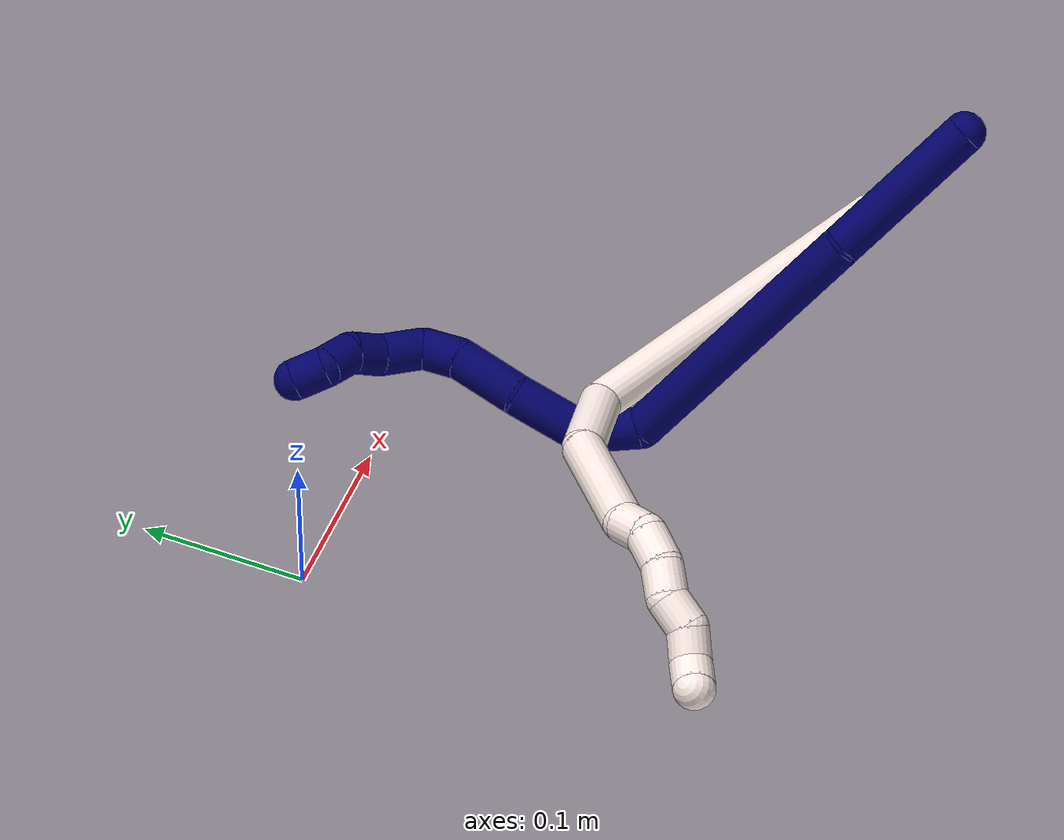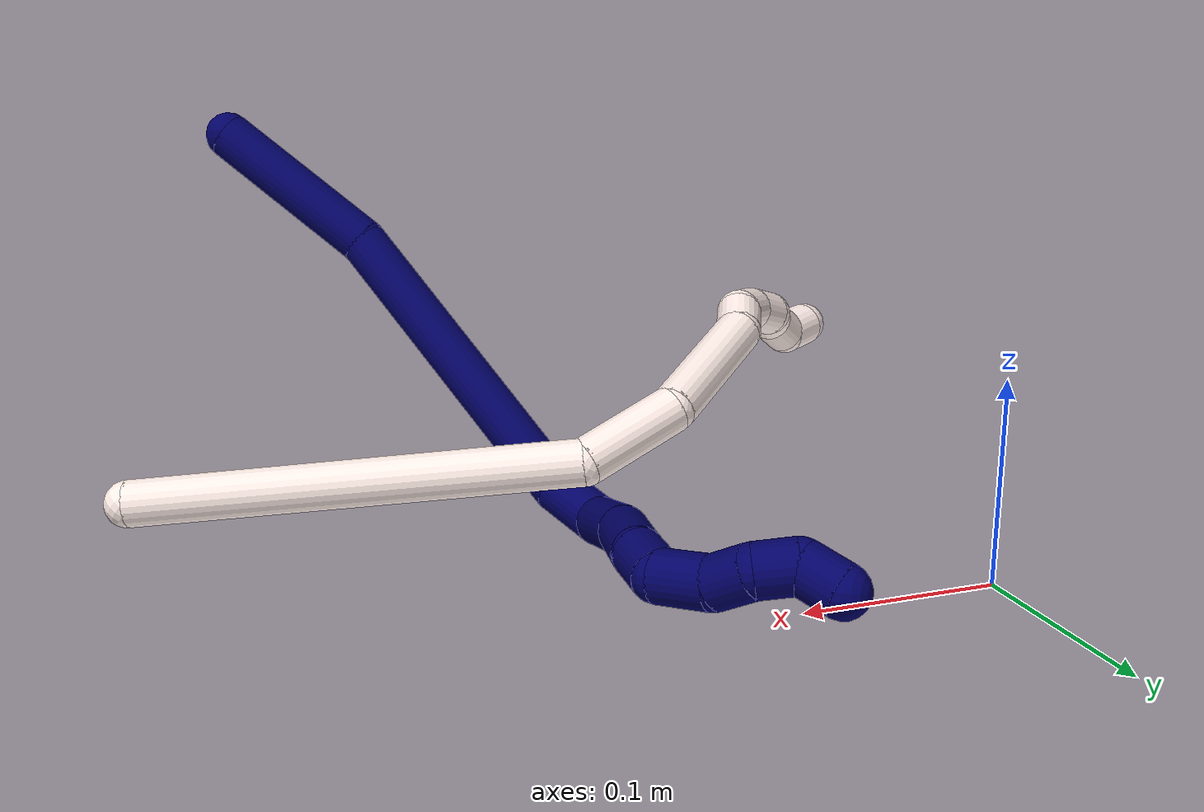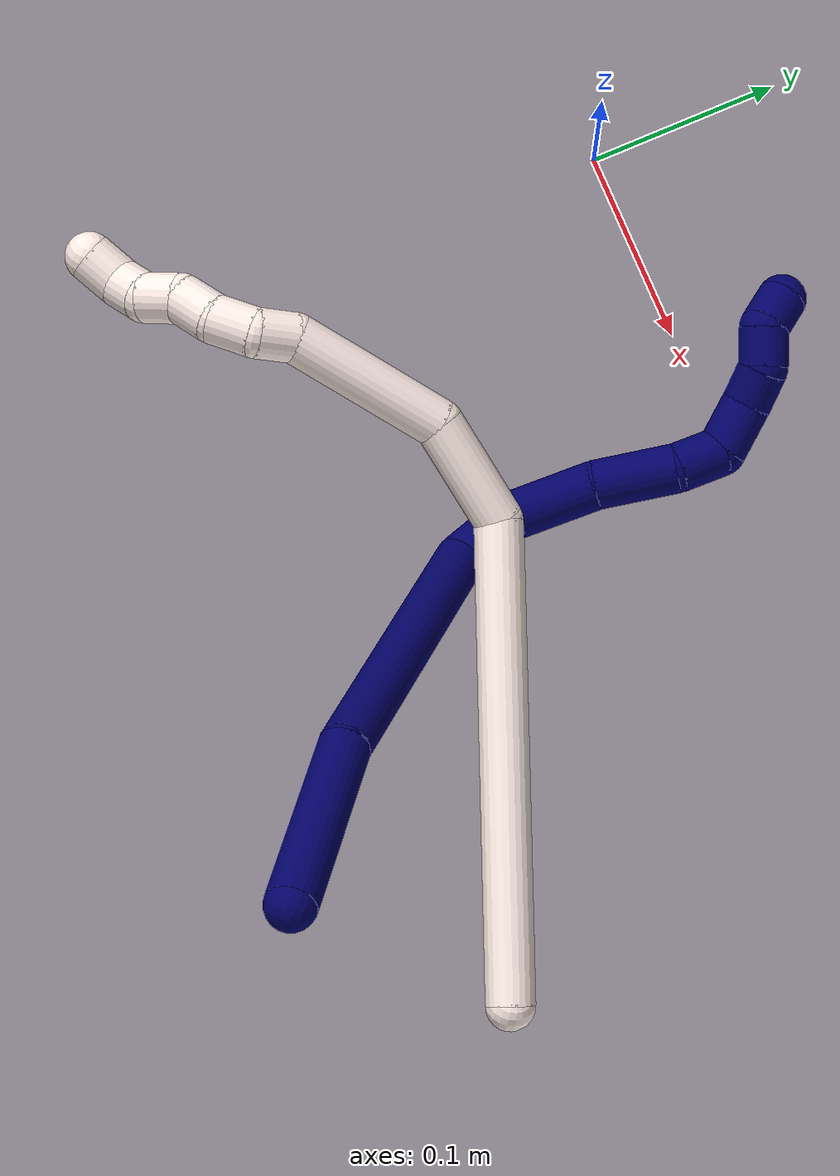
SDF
<sdf version="1.7">
 <world name="default">
  <model name="7">
   <static>0</static>
   <link name="7">
    <collision name="collision-cylinder-e_1_1_4">
     <pose>0.015971 0.026418 -0.037266 -2.52491 0.336335 -0.979444</pose>
     <geometry><cylinder><radius>0.0125</radius><length>0.096783</length></cylinder></geometry>
     <surface>
      <friction><ode><mu>1.16</mu><mu2>1.16</mu2><slip1>0</slip1><slip2>0</slip2></ode></friction>
      <contact><ode><kp>1e+06</kp><kd>1</kd><max_vel>0</max_vel><min_depth>0.001</min_depth></ode></contact>
     </surface>
    </collision>
    <visual name="visual-cylinder-e_1_1_4">
     <pose>0.015971 0.026418 -0.037266 -2.52491 0.336335 -0.979444</pose>
     <geometry><cylinder><radius>0.0125</radius><length>0.096783</length></cylinder></geometry>
     <material><ambient>0.003922 0 0.403922 1</ambient></material>
    </visual>
    <collision name="collision-cylinder-e_2_4_5">
     <pose>0.051235 0.113967 -0.130602 -2.31304 0.228528 -0.510594</pose>
     <geometry><cylinder><radius>0.0125</radius><length>0.170328</length></cylinder></geometry>
     <surface>
      <friction><ode><mu>1.16</mu><mu2>1.16</mu2><slip1>0</slip1><slip2>0</slip2></ode></friction>
      <contact><ode><kp>1e+06</kp><kd>1</kd><max_vel>0</max_vel><min_depth>0.001</min_depth></ode></contact>
     </surface>
    </collision>
    <visual name="visual-cylinder-e_2_4_5">
     <pose>0.051235 0.113967 -0.130602 -2.31304 0.228528 -0.510594</pose>
     <geometry><cylinder><radius>0.0125</radius><length>0.170328</length></cylinder></geometry>
     <material><ambient>0.003922 0 0.403922 1</ambient></material>
    </visual>
    <collision name="collision-cylinder-e_3_5_6">
     <pose>0.065532 0.181701 -0.202682 -2.75036 -0.280842 1.23925</pose>
     <geometry><cylinder><radius>0.0125</radius><length>0.03605</length></cylinder></geometry>
     <surface>
      <friction><ode><mu>1.16</mu><mu2>1.16</mu2><slip1>0</slip1><slip2>0</slip2></ode></friction>
      <contact><ode><kp>1e+06</kp><kd>1</kd><max_vel>0</max_vel><min_depth>0.001</min_depth></ode></contact>
     </surface>
    </collision>
    <visual name="visual-cylinder-e_3_5_6">
     <pose>0.065532 0.181701 -0.202682 -2.75036 -0.280842 1.23925</pose>
     <geometry><cylinder><radius>0.0125</radius><length>0.03605</length></cylinder></geometry>
     <material><ambient>0.003922 0 0.403922 1</ambient></material>
    </visual>
    <collision name="collision-cylinder-e_4_6_7">
     <pose>0.044611 0.188827 -0.234087 -3.10776 -0.802016 3.06184</pose>
     <geometry><cylinder><radius>0.0125</radius><length>0.044313</length></cylinder></geometry>
     <surface>
      <friction><ode><mu>1.16</mu><mu2>1.16</mu2><slip1>0</slip1><slip2>0</slip2></ode></friction>
      <contact><ode><kp>1e+06</kp><kd>1</kd><max_vel>0</max_vel><min_depth>0.001</min_depth></ode></contact>
     </surface>
    </collision>
    <visual name="visual-cylinder-e_4_6_7">
     <pose>0.044611 0.188827 -0.234087 -3.10776 -0.802016 3.06184</pose>
     <geometry><cylinder><radius>0.0125</radius><length>0.044313</length></cylinder></geometry>
     <material><ambient>0.003922 0 0.403922 1</ambient></material>
    </visual>
    <collision name="collision-cylinder-e_5_7_8">
     <pose>0.012492 0.192588 -0.261923 -2.8868 -0.899864 2.62309</pose>
     <geometry><cylinder><radius>0.0125</radius><length>0.041353</length></cylinder></geometry>
     <surface>
      <friction><ode><mu>1.16</mu><mu2>1.16</mu2><slip1>0</slip1><slip2>0</slip2></ode></friction>
      <contact><ode><kp>1e+06</kp><kd>1</kd><max_vel>0</max_vel><min_depth>0.001</min_depth></ode></contact>
     </surface>
    </collision>
    <visual name="visual-cylinder-e_5_7_8">
     <pose>0.012492 0.192588 -0.261923 -2.8868 -0.899864 2.62309</pose>
     <geometry><cylinder><radius>0.0125</radius><length>0.041353</length></cylinder></geometry>
     <material><ambient>0.003922 0 0.403922 1</ambient></material>
    </visual>
    <collision name="collision-cylinder-e_6_8_9">
     <pose>-0.010847 0.199601 -0.283165 -2.73668 -0.640898 2.03378</pose>
     <geometry><cylinder><radius>0.0125</radius><length>0.023896</length></cylinder></geometry>
     <surface>
      <friction><ode><mu>1.16</mu><mu2>1.16</mu2><slip1>0</slip1><slip2>0</slip2></ode></friction>
      <contact><ode><kp>1e+06</kp><kd>1</kd><max_vel>0</max_vel><min_depth>0.001</min_depth></ode></contact>
     </surface>
    </collision>
    <visual name="visual-cylinder-e_6_8_9">
     <pose>-0.010847 0.199601 -0.283165 -2.73668 -0.640898 2.03378</pose>
     <geometry><cylinder><radius>0.0125</radius><length>0.023896</length></cylinder></geometry>
     <material><ambient>0.003922 0 0.403922 1</ambient></material>
    </visual>
    <collision name="collision-cylinder-e_7_9_10">
     <pose>-0.018567 0.203198 -0.305362 3.12852 -0.043028 -2.55177</pose>
     <geometry><cylinder><radius>0.0125</radius><length>0.026815</length></cylinder></geometry>
     <surface>
      <friction><ode><mu>1.16</mu><mu2>1.16</mu2><slip1>0</slip1><slip2>0</slip2></ode></friction>
      <contact><ode><kp>1e+06</kp><kd>1</kd><max_vel>0</max_vel><min_depth>0.001</min_depth></ode></contact>
     </surface>
    </collision>
    <visual name="visual-cylinder-e_7_9_10">
     <pose>-0.018567 0.203198 -0.305362 3.12852 -0.043028 -2.55177</pose>
     <geometry><cylinder><radius>0.0125</radius><length>0.026815</length></cylinder></geometry>
     <material><ambient>0.003922 0 0.403922 1</ambient></material>
    </visual>
    <collision name="collision-cylinder-e_8_10_11">
     <pose>-0.020288 0.199215 -0.328124 2.75551 -0.112684 -0.561816</pose>
     <geometry><cylinder><radius>0.0125</radius><length>0.020354</length></cylinder></geometry>
     <surface>
      <friction><ode><mu>1.16</mu><mu2>1.16</mu2><slip1>0</slip1><slip2>0</slip2></ode></friction>
      <contact><ode><kp>1e+06</kp><kd>1</kd><max_vel>0</max_vel><min_depth>0.001</min_depth></ode></contact>
     </surface>
    </collision>
    <visual name="visual-cylinder-e_8_10_11">
     <pose>-0.020288 0.199215 -0.328124 2.75551 -0.112684 -0.561816</pose>
     <geometry><cylinder><radius>0.0125</radius><length>0.020354</length></cylinder></geometry>
     <material><ambient>0.003922 0 0.403922 1</ambient></material>
    </visual>
    <collision name="collision-cylinder-e_9_11_12">
     <pose>-0.017716 0.19329 -0.346551 2.91205 0.380068 2.0618</pose>
     <geometry><cylinder><radius>0.0125</radius><length>0.020037</length></cylinder></geometry>
     <surface>
      <friction><ode><mu>1.16</mu><mu2>1.16</mu2><slip1>0</slip1><slip2>0</slip2></ode></friction>
      <contact><ode><kp>1e+06</kp><kd>1</kd><max_vel>0</max_vel><min_depth>0.001</min_depth></ode></contact>
     </surface>
    </collision>
    <visual name="visual-cylinder-e_9_11_12">
     <pose>-0.017716 0.19329 -0.346551 2.91205 0.380068 2.0618</pose>
     <geometry><cylinder><radius>0.0125</radius><length>0.020037</length></cylinder></geometry>
     <material><ambient>0.003922 0 0.403922 1</ambient></material>
    </visual>
    <collision name="collision-cylinder-e_10_12_2">
     <pose>-0.013522 0.195173 -0.364802 -2.73118 0.047547 -0.227504</pose>
     <geometry><cylinder><radius>0.0125</radius><length>0.020071</length></cylinder></geometry>
     <surface>
      <friction><ode><mu>1.16</mu><mu2>1.16</mu2><slip1>0</slip1><slip2>0</slip2></ode></friction>
      <contact><ode><kp>1e+06</kp><kd>1</kd><max_vel>0</max_vel><min_depth>0.001</min_depth></ode></contact>
     </surface>
    </collision>
    <visual name="visual-cylinder-e_10_12_2">
     <pose>-0.013522 0.195173 -0.364802 -2.73118 0.047547 -0.227504</pose>
     <geometry><cylinder><radius>0.0125</radius><length>0.020071</length></cylinder></geometry>
     <material><ambient>0.003922 0 0.403922 1</ambient></material>
    </visual>
    <collision name="collision-sphere-2">
     <pose>-0.013046 0.199173 -0.373994 0 -0 0</pose>
     <geometry><sphere><radius>0.0125</radius></sphere></geometry>
     <surface>
      <friction><ode><mu>1.16</mu><mu2>1.16</mu2><slip1>0</slip1><slip2>0</slip2></ode></friction>
      <contact><ode><kp>1e+06</kp><kd>1</kd><max_vel>0</max_vel><min_depth>0.001</min_depth></ode></contact>
     </surface>
    </collision>
    <visual name="visual-sphere-2">
     <pose>-0.013046 0.199173 -0.373994 0 -0 0</pose>
     <geometry><sphere><radius>0.0125</radius></sphere></geometry>
     <material><ambient>0.003922 0 0.403922 1</ambient></material>
    </visual>
    <collision name="collision-sphere-12">
     <pose>-0.013999 0.191174 -0.355611 0 -0 0</pose>
     <geometry><sphere><radius>0.0125</radius></sphere></geometry>
     <surface>
      <friction><ode><mu>1.16</mu><mu2>1.16</mu2><slip1>0</slip1><slip2>0</slip2></ode></friction>
      <contact><ode><kp>1e+06</kp><kd>1</kd><max_vel>0</max_vel><min_depth>0.001</min_depth></ode></contact>
     </surface>
    </collision>
    <visual name="visual-sphere-12">
     <pose>-0.013999 0.191174 -0.355611 0 -0 0</pose>
     <geometry><sphere><radius>0.0125</radius></sphere></geometry>
     <material><ambient>0.003922 0 0.403922 1</ambient></material>
    </visual>
    <collision name="collision-sphere-11">
     <pose>-0.021433 0.195407 -0.337492 0 -0 0</pose>
     <geometry><sphere><radius>0.0125</radius></sphere></geometry>
     <surface>
      <friction><ode><mu>1.16</mu><mu2>1.16</mu2><slip1>0</slip1><slip2>0</slip2></ode></friction>
      <contact><ode><kp>1e+06</kp><kd>1</kd><max_vel>0</max_vel><min_depth>0.001</min_depth></ode></contact>
     </surface>
    </collision>
    <visual name="visual-sphere-11">
     <pose>-0.021433 0.195407 -0.337492 0 -0 0</pose>
     <geometry><sphere><radius>0.0125</radius></sphere></geometry>
     <material><ambient>0.003922 0 0.403922 1</ambient></material>
    </visual>
    <collision name="collision-sphere-10">
     <pose>-0.019144 0.203023 -0.318756 0 -0 0</pose>
     <geometry><sphere><radius>0.0125</radius></sphere></geometry>
     <surface>
      <friction><ode><mu>1.16</mu><mu2>1.16</mu2><slip1>0</slip1><slip2>0</slip2></ode></friction>
      <contact><ode><kp>1e+06</kp><kd>1</kd><max_vel>0</max_vel><min_depth>0.001</min_depth></ode></contact>
     </surface>
    </collision>
    <visual name="visual-sphere-10">
     <pose>-0.019144 0.203023 -0.318756 0 -0 0</pose>
     <geometry><sphere><radius>0.0125</radius></sphere></geometry>
     <material><ambient>0.003922 0 0.403922 1</ambient></material>
    </visual>
    <collision name="collision-sphere-9">
     <pose>-0.017991 0.203373 -0.291968 0 -0 0</pose>
     <geometry><sphere><radius>0.0125</radius></sphere></geometry>
     <surface>
      <friction><ode><mu>1.16</mu><mu2>1.16</mu2><slip1>0</slip1><slip2>0</slip2></ode></friction>
      <contact><ode><kp>1e+06</kp><kd>1</kd><max_vel>0</max_vel><min_depth>0.001</min_depth></ode></contact>
     </surface>
    </collision>
    <visual name="visual-sphere-9">
     <pose>-0.017991 0.203373 -0.291968 0 -0 0</pose>
     <geometry><sphere><radius>0.0125</radius></sphere></geometry>
     <material><ambient>0.003922 0 0.403922 1</ambient></material>
    </visual>
    <collision name="collision-sphere-4">
     <pose>0.031941 0.052837 -0.074532 0 -0 0</pose>
     <geometry><sphere><radius>0.0125</radius></sphere></geometry>
     <surface>
      <friction><ode><mu>1.16</mu><mu2>1.16</mu2><slip1>0</slip1><slip2>0</slip2></ode></friction>
      <contact><ode><kp>1e+06</kp><kd>1</kd><max_vel>0</max_vel><min_depth>0.001</min_depth></ode></contact>
     </surface>
    </collision>
    <visual name="visual-sphere-4">
     <pose>0.031941 0.052837 -0.074532 0 -0 0</pose>
     <geometry><sphere><radius>0.0125</radius></sphere></geometry>
     <material><ambient>0.003922 0 0.403922 1</ambient></material>
    </visual>
    <collision name="collision-sphere-1">
     <geometry><sphere><radius>0.0125</radius></sphere></geometry>
     <surface>
      <friction><ode><mu>1.16</mu><mu2>1.16</mu2><slip1>0</slip1><slip2>0</slip2></ode></friction>
      <contact><ode><kp>1e+06</kp><kd>1</kd><max_vel>0</max_vel><min_depth>0.001</min_depth></ode></contact>
     </surface>
    </collision>
    <visual name="visual-sphere-1">
     <geometry><sphere><radius>0.0125</radius></sphere></geometry>
     <material><ambient>0.003922 0 0.403922 1</ambient></material>
    </visual>
    <collision name="collision-sphere-8">
     <pose>-0.003703 0.195828 -0.274363 0 -0 0</pose>
     <geometry><sphere><radius>0.0125</radius></sphere></geometry>
     <surface>
      <friction><ode><mu>1.16</mu><mu2>1.16</mu2><slip1>0</slip1><slip2>0</slip2></ode></friction>
      <contact><ode><kp>1e+06</kp><kd>1</kd><max_vel>0</max_vel><min_depth>0.001</min_depth></ode></contact>
     </surface>
    </collision>
    <visual name="visual-sphere-8">
     <pose>-0.003703 0.195828 -0.274363 0 -0 0</pose>
     <geometry><sphere><radius>0.0125</radius></sphere></geometry>
     <material><ambient>0.003922 0 0.403922 1</ambient></material>
    </visual>
    <collision name="collision-sphere-5">
     <pose>0.070528 0.175097 -0.186671 0 -0 0</pose>
     <geometry><sphere><radius>0.0125</radius></sphere></geometry>
     <surface>
      <friction><ode><mu>1.16</mu><mu2>1.16</mu2><slip1>0</slip1><slip2>0</slip2></ode></friction>
      <contact><ode><kp>1e+06</kp><kd>1</kd><max_vel>0</max_vel><min_depth>0.001</min_depth></ode></contact>
     </surface>
    </collision>
    <visual name="visual-sphere-5">
     <pose>0.070528 0.175097 -0.186671 0 -0 0</pose>
     <geometry><sphere><radius>0.0125</radius></sphere></geometry>
     <material><ambient>0.003922 0 0.403922 1</ambient></material>
    </visual>
    <collision name="collision-sphere-6">
     <pose>0.060536 0.188306 -0.218692 0 -0 0</pose>
     <geometry><sphere><radius>0.0125</radius></sphere></geometry>
     <surface>
      <friction><ode><mu>1.16</mu><mu2>1.16</mu2><slip1>0</slip1><slip2>0</slip2></ode></friction>
      <contact><ode><kp>1e+06</kp><kd>1</kd><max_vel>0</max_vel><min_depth>0.001</min_depth></ode></contact>
     </surface>
    </collision>
    <visual name="visual-sphere-6">
     <pose>0.060536 0.188306 -0.218692 0 -0 0</pose>
     <geometry><sphere><radius>0.0125</radius></sphere></geometry>
     <material><ambient>0.003922 0 0.403922 1</ambient></material>
    </visual>
    <collision name="collision-sphere-7">
     <pose>0.028686 0.189348 -0.249483 0 -0 0</pose>
     <geometry><sphere><radius>0.0125</radius></sphere></geometry>
     <surface>
      <friction><ode><mu>1.16</mu><mu2>1.16</mu2><slip1>0</slip1><slip2>0</slip2></ode></friction>
      <contact><ode><kp>1e+06</kp><kd>1</kd><max_vel>0</max_vel><min_depth>0.001</min_depth></ode></contact>
     </surface>
    </collision>
    <visual name="visual-sphere-7">
     <pose>0.028686 0.189348 -0.249483 0 -0 0</pose>
     <geometry><sphere><radius>0.0125</radius></sphere></geometry>
     <material><ambient>0.003922 0 0.403922 1</ambient></material>
    </visual>
    <inertial>
     <pose>0.026664 0.133828 -0.180524 0 -0 0</pose>
     <mass>0.5</mass>
     <inertia>
      <ixx>0.000133</ixx>
      <ixy>0</ixy>
      <ixz>0</ixz>
      <iyy>-0.000457</iyy>
      <iyz>0</iyz>
      <izz>-0.000483</izz>
     </inertia>
    </inertial>
   </link>
   <pose>0.308659 -0.287941 0.192699 -1.64783 0.305825 -2.45426</pose>
  </model>
  <model name="11">
   <static>0</static>
   <link name="11">
    <collision name="collision-cylinder-e_1_1_4">
     <pose>-0.072925 -0.054903 -0.075962 2.51575 -0.661226 -1.62975</pose>
     <geometry><cylinder><radius>0.0125</radius><length>0.237509</length></cylinder></geometry>
     <surface>
      <friction><ode><mu>1.16</mu><mu2>1.16</mu2><slip1>0</slip1><slip2>0</slip2></ode></friction>
      <contact><ode><kp>1e+06</kp><kd>1</kd><max_vel>0</max_vel><min_depth>0.001</min_depth></ode></contact>
     </surface>
    </collision>
    <visual name="visual-cylinder-e_1_1_4">
     <pose>-0.072925 -0.054903 -0.075962 2.51575 -0.661226 -1.62975</pose>
     <geometry><cylinder><radius>0.0125</radius><length>0.237509</length></cylinder></geometry>
     <material><ambient>1 0.933333 0.909804 1</ambient></material>
    </visual>
    <collision name="collision-cylinder-e_2_4_5">
     <pose>-0.167367 -0.106508 -0.170239 -2.96347 -0.8577 2.75584</pose>
     <geometry><cylinder><radius>0.0125</radius><length>0.056895</length></cylinder></geometry>
     <surface>
      <friction><ode><mu>1.16</mu><mu2>1.16</mu2><slip1>0</slip1><slip2>0</slip2></ode></friction>
      <contact><ode><kp>1e+06</kp><kd>1</kd><max_vel>0</max_vel><min_depth>0.001</min_depth></ode></contact>
     </surface>
    </collision>
    <visual name="visual-cylinder-e_2_4_5">
     <pose>-0.167367 -0.106508 -0.170239 -2.96347 -0.8577 2.75584</pose>
     <geometry><cylinder><radius>0.0125</radius><length>0.056895</length></cylinder></geometry>
     <material><ambient>1 0.933333 0.909804 1</ambient></material>
    </visual>
    <collision name="collision-cylinder-e_3_5_6">
     <pose>-0.22145 -0.083041 -0.203828 -2.21891 -0.910312 1.55521</pose>
     <geometry><cylinder><radius>0.0125</radius><length>0.08248</length></cylinder></geometry>
     <surface>
      <friction><ode><mu>1.16</mu><mu2>1.16</mu2><slip1>0</slip1><slip2>0</slip2></ode></friction>
      <contact><ode><kp>1e+06</kp><kd>1</kd><max_vel>0</max_vel><min_depth>0.001</min_depth></ode></contact>
     </surface>
    </collision>
    <visual name="visual-cylinder-e_3_5_6">
     <pose>-0.22145 -0.083041 -0.203828 -2.21891 -0.910312 1.55521</pose>
     <geometry><cylinder><radius>0.0125</radius><length>0.08248</length></cylinder></geometry>
     <material><ambient>1 0.933333 0.909804 1</ambient></material>
    </visual>
    <collision name="collision-cylinder-e_4_6_7">
     <pose>-0.260129 -0.054997 -0.220595 -1.75818 -0.651616 0.774641</pose>
     <geometry><cylinder><radius>0.0125</radius><length>0.020158</length></cylinder></geometry>
     <surface>
      <friction><ode><mu>1.16</mu><mu2>1.16</mu2><slip1>0</slip1><slip2>0</slip2></ode></friction>
      <contact><ode><kp>1e+06</kp><kd>1</kd><max_vel>0</max_vel><min_depth>0.001</min_depth></ode></contact>
     </surface>
    </collision>
    <visual name="visual-cylinder-e_4_6_7">
     <pose>-0.260129 -0.054997 -0.220595 -1.75818 -0.651616 0.774641</pose>
     <geometry><cylinder><radius>0.0125</radius><length>0.020158</length></cylinder></geometry>
     <material><ambient>1 0.933333 0.909804 1</ambient></material>
    </visual>
    <collision name="collision-cylinder-e_5_7_8">
     <pose>-0.276381 -0.043006 -0.221446 -1.41615 -1.18087 1.04187</pose>
     <geometry><cylinder><radius>0.0125</radius><length>0.021924</length></cylinder></geometry>
     <surface>
      <friction><ode><mu>1.16</mu><mu2>1.16</mu2><slip1>0</slip1><slip2>0</slip2></ode></friction>
      <contact><ode><kp>1e+06</kp><kd>1</kd><max_vel>0</max_vel><min_depth>0.001</min_depth></ode></contact>
     </surface>
    </collision>
    <visual name="visual-cylinder-e_5_7_8">
     <pose>-0.276381 -0.043006 -0.221446 -1.41615 -1.18087 1.04187</pose>
     <geometry><cylinder><radius>0.0125</radius><length>0.021924</length></cylinder></geometry>
     <material><ambient>1 0.933333 0.909804 1</ambient></material>
    </visual>
    <collision name="collision-cylinder-e_6_8_9">
     <pose>-0.296925 -0.038031 -0.220299 -1.03929 -1.47536 0.958947</pose>
     <geometry><cylinder><radius>0.0125</radius><length>0.020905</length></cylinder></geometry>
     <surface>
      <friction><ode><mu>1.16</mu><mu2>1.16</mu2><slip1>0</slip1><slip2>0</slip2></ode></friction>
      <contact><ode><kp>1e+06</kp><kd>1</kd><max_vel>0</max_vel><min_depth>0.001</min_depth></ode></contact>
     </surface>
    </collision>
    <visual name="visual-cylinder-e_6_8_9">
     <pose>-0.296925 -0.038031 -0.220299 -1.03929 -1.47536 0.958947</pose>
     <geometry><cylinder><radius>0.0125</radius><length>0.020905</length></cylinder></geometry>
     <material><ambient>1 0.933333 0.909804 1</ambient></material>
    </visual>
    <collision name="collision-cylinder-e_7_9_10">
     <pose>-0.315756 -0.033434 -0.215811 -0.753593 -0.995599 0.423637</pose>
     <geometry><cylinder><radius>0.0125</radius><length>0.020084</length></cylinder></geometry>
     <surface>
      <friction><ode><mu>1.16</mu><mu2>1.16</mu2><slip1>0</slip1><slip2>0</slip2></ode></friction>
      <contact><ode><kp>1e+06</kp><kd>1</kd><max_vel>0</max_vel><min_depth>0.001</min_depth></ode></contact>
     </surface>
    </collision>
    <visual name="visual-cylinder-e_7_9_10">
     <pose>-0.315756 -0.033434 -0.215811 -0.753593 -0.995599 0.423637</pose>
     <geometry><cylinder><radius>0.0125</radius><length>0.020084</length></cylinder></geometry>
     <material><ambient>1 0.933333 0.909804 1</ambient></material>
    </visual>
    <collision name="collision-cylinder-e_8_10_11">
     <pose>-0.333748 -0.030853 -0.209147 0.407424 -1.27467 -0.303551</pose>
     <geometry><cylinder><radius>0.0125</radius><length>0.020004</length></cylinder></geometry>
     <surface>
      <friction><ode><mu>1.16</mu><mu2>1.16</mu2><slip1>0</slip1><slip2>0</slip2></ode></friction>
      <contact><ode><kp>1e+06</kp><kd>1</kd><max_vel>0</max_vel><min_depth>0.001</min_depth></ode></contact>
     </surface>
    </collision>
    <visual name="visual-cylinder-e_8_10_11">
     <pose>-0.333748 -0.030853 -0.209147 0.407424 -1.27467 -0.303551</pose>
     <geometry><cylinder><radius>0.0125</radius><length>0.020004</length></cylinder></geometry>
     <material><ambient>1 0.933333 0.909804 1</ambient></material>
    </visual>
    <collision name="collision-cylinder-e_9_11_2">
     <pose>-0.35249 -0.029661 -0.209741 -2.51934 -1.15708 2.22651</pose>
     <geometry><cylinder><radius>0.0125</radius><length>0.020042</length></cylinder></geometry>
     <surface>
      <friction><ode><mu>1.16</mu><mu2>1.16</mu2><slip1>0</slip1><slip2>0</slip2></ode></friction>
      <contact><ode><kp>1e+06</kp><kd>1</kd><max_vel>0</max_vel><min_depth>0.001</min_depth></ode></contact>
     </surface>
    </collision>
    <visual name="visual-cylinder-e_9_11_2">
     <pose>-0.35249 -0.029661 -0.209741 -2.51934 -1.15708 2.22651</pose>
     <geometry><cylinder><radius>0.0125</radius><length>0.020042</length></cylinder></geometry>
     <material><ambient>1 0.933333 0.909804 1</ambient></material>
    </visual>
    <collision name="collision-sphere-2">
     <pose>-0.361666 -0.027313 -0.213015 0 -0 0</pose>
     <geometry><sphere><radius>0.0125</radius></sphere></geometry>
     <surface>
      <friction><ode><mu>1.16</mu><mu2>1.16</mu2><slip1>0</slip1><slip2>0</slip2></ode></friction>
      <contact><ode><kp>1e+06</kp><kd>1</kd><max_vel>0</max_vel><min_depth>0.001</min_depth></ode></contact>
     </surface>
    </collision>
    <visual name="visual-sphere-2">
     <pose>-0.361666 -0.027313 -0.213015 0 -0 0</pose>
     <geometry><sphere><radius>0.0125</radius></sphere></geometry>
     <material><ambient>1 0.933333 0.909804 1</ambient></material>
    </visual>
    <collision name="collision-sphere-11">
     <pose>-0.343314 -0.032009 -0.206468 0 -0 0</pose>
     <geometry><sphere><radius>0.0125</radius></sphere></geometry>
     <surface>
      <friction><ode><mu>1.16</mu><mu2>1.16</mu2><slip1>0</slip1><slip2>0</slip2></ode></friction>
      <contact><ode><kp>1e+06</kp><kd>1</kd><max_vel>0</max_vel><min_depth>0.001</min_depth></ode></contact>
     </surface>
    </collision>
    <visual name="visual-sphere-11">
     <pose>-0.343314 -0.032009 -0.206468 0 -0 0</pose>
     <geometry><sphere><radius>0.0125</radius></sphere></geometry>
     <material><ambient>1 0.933333 0.909804 1</ambient></material>
    </visual>
    <collision name="collision-sphere-10">
     <pose>-0.324182 -0.029696 -0.211827 0 -0 0</pose>
     <geometry><sphere><radius>0.0125</radius></sphere></geometry>
     <surface>
      <friction><ode><mu>1.16</mu><mu2>1.16</mu2><slip1>0</slip1><slip2>0</slip2></ode></friction>
      <contact><ode><kp>1e+06</kp><kd>1</kd><max_vel>0</max_vel><min_depth>0.001</min_depth></ode></contact>
     </surface>
    </collision>
    <visual name="visual-sphere-10">
     <pose>-0.324182 -0.029696 -0.211827 0 -0 0</pose>
     <geometry><sphere><radius>0.0125</radius></sphere></geometry>
     <material><ambient>1 0.933333 0.909804 1</ambient></material>
    </visual>
    <collision name="collision-sphere-9">
     <pose>-0.30733 -0.037172 -0.219795 0 -0 0</pose>
     <geometry><sphere><radius>0.0125</radius></sphere></geometry>
     <surface>
      <friction><ode><mu>1.16</mu><mu2>1.16</mu2><slip1>0</slip1><slip2>0</slip2></ode></friction>
      <contact><ode><kp>1e+06</kp><kd>1</kd><max_vel>0</max_vel><min_depth>0.001</min_depth></ode></contact>
     </surface>
    </collision>
    <visual name="visual-sphere-9">
     <pose>-0.30733 -0.037172 -0.219795 0 -0 0</pose>
     <geometry><sphere><radius>0.0125</radius></sphere></geometry>
     <material><ambient>1 0.933333 0.909804 1</ambient></material>
    </visual>
    <collision name="collision-sphere-4">
     <pose>-0.145851 -0.109806 -0.151924 0 -0 0</pose>
     <geometry><sphere><radius>0.0125</radius></sphere></geometry>
     <surface>
      <friction><ode><mu>1.16</mu><mu2>1.16</mu2><slip1>0</slip1><slip2>0</slip2></ode></friction>
      <contact><ode><kp>1e+06</kp><kd>1</kd><max_vel>0</max_vel><min_depth>0.001</min_depth></ode></contact>
     </surface>
    </collision>
    <visual name="visual-sphere-4">
     <pose>-0.145851 -0.109806 -0.151924 0 -0 0</pose>
     <geometry><sphere><radius>0.0125</radius></sphere></geometry>
     <material><ambient>1 0.933333 0.909804 1</ambient></material>
    </visual>
    <collision name="collision-sphere-1">
     <geometry><sphere><radius>0.0125</radius></sphere></geometry>
     <surface>
      <friction><ode><mu>1.16</mu><mu2>1.16</mu2><slip1>0</slip1><slip2>0</slip2></ode></friction>
      <contact><ode><kp>1e+06</kp><kd>1</kd><max_vel>0</max_vel><min_depth>0.001</min_depth></ode></contact>
     </surface>
    </collision>
    <visual name="visual-sphere-1">
     <geometry><sphere><radius>0.0125</radius></sphere></geometry>
     <material><ambient>1 0.933333 0.909804 1</ambient></material>
    </visual>
    <collision name="collision-sphere-8">
     <pose>-0.28652 -0.038889 -0.220804 0 -0 0</pose>
     <geometry><sphere><radius>0.0125</radius></sphere></geometry>
     <surface>
      <friction><ode><mu>1.16</mu><mu2>1.16</mu2><slip1>0</slip1><slip2>0</slip2></ode></friction>
      <contact><ode><kp>1e+06</kp><kd>1</kd><max_vel>0</max_vel><min_depth>0.001</min_depth></ode></contact>
     </surface>
    </collision>
    <visual name="visual-sphere-8">
     <pose>-0.28652 -0.038889 -0.220804 0 -0 0</pose>
     <geometry><sphere><radius>0.0125</radius></sphere></geometry>
     <material><ambient>1 0.933333 0.909804 1</ambient></material>
    </visual>
    <collision name="collision-sphere-5">
     <pose>-0.188883 -0.103211 -0.188555 0 -0 0</pose>
     <geometry><sphere><radius>0.0125</radius></sphere></geometry>
     <surface>
      <friction><ode><mu>1.16</mu><mu2>1.16</mu2><slip1>0</slip1><slip2>0</slip2></ode></friction>
      <contact><ode><kp>1e+06</kp><kd>1</kd><max_vel>0</max_vel><min_depth>0.001</min_depth></ode></contact>
     </surface>
    </collision>
    <visual name="visual-sphere-5">
     <pose>-0.188883 -0.103211 -0.188555 0 -0 0</pose>
     <geometry><sphere><radius>0.0125</radius></sphere></geometry>
     <material><ambient>1 0.933333 0.909804 1</ambient></material>
    </visual>
    <collision name="collision-sphere-6">
     <pose>-0.254017 -0.06287 -0.219102 0 -0 0</pose>
     <geometry><sphere><radius>0.0125</radius></sphere></geometry>
     <surface>
      <friction><ode><mu>1.16</mu><mu2>1.16</mu2><slip1>0</slip1><slip2>0</slip2></ode></friction>
      <contact><ode><kp>1e+06</kp><kd>1</kd><max_vel>0</max_vel><min_depth>0.001</min_depth></ode></contact>
     </surface>
    </collision>
    <visual name="visual-sphere-6">
     <pose>-0.254017 -0.06287 -0.219102 0 -0 0</pose>
     <geometry><sphere><radius>0.0125</radius></sphere></geometry>
     <material><ambient>1 0.933333 0.909804 1</ambient></material>
    </visual>
    <collision name="collision-sphere-7">
     <pose>-0.266242 -0.047123 -0.222088 0 -0 0</pose>
     <geometry><sphere><radius>0.0125</radius></sphere></geometry>
     <surface>
      <friction><ode><mu>1.16</mu><mu2>1.16</mu2><slip1>0</slip1><slip2>0</slip2></ode></friction>
      <contact><ode><kp>1e+06</kp><kd>1</kd><max_vel>0</max_vel><min_depth>0.001</min_depth></ode></contact>
     </surface>
    </collision>
    <visual name="visual-sphere-7">
     <pose>-0.266242 -0.047123 -0.222088 0 -0 0</pose>
     <geometry><sphere><radius>0.0125</radius></sphere></geometry>
     <material><ambient>1 0.933333 0.909804 1</ambient></material>
    </visual>
    <inertial>
     <pose>-0.165401 -0.061357 -0.142336 0 -0 0</pose>
     <mass>0.5</mass>
     <inertia>
      <ixx>-0.000939</ixx>
      <ixy>0</ixy>
      <ixz>0</ixz>
      <iyy>-0.000338</iyy>
      <iyz>0</iyz>
      <izz>0.001227</izz>
     </inertia>
    </inertial>
   </link>
   <pose>0.379638 -0.209611 0.013812 2.59554 -0.303689 0.442253</pose>
  </model>
 </world>
</sdf>
